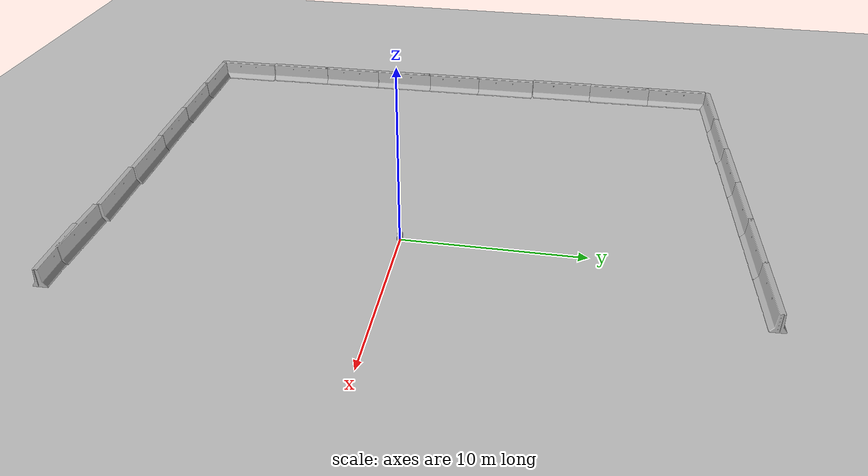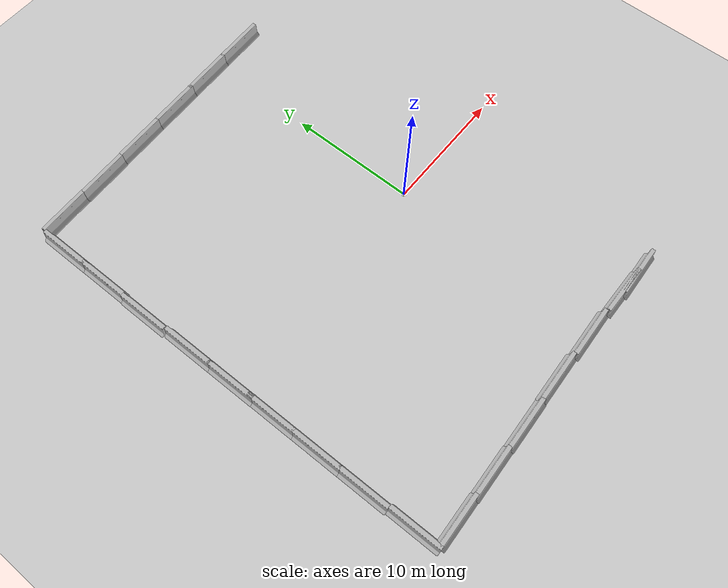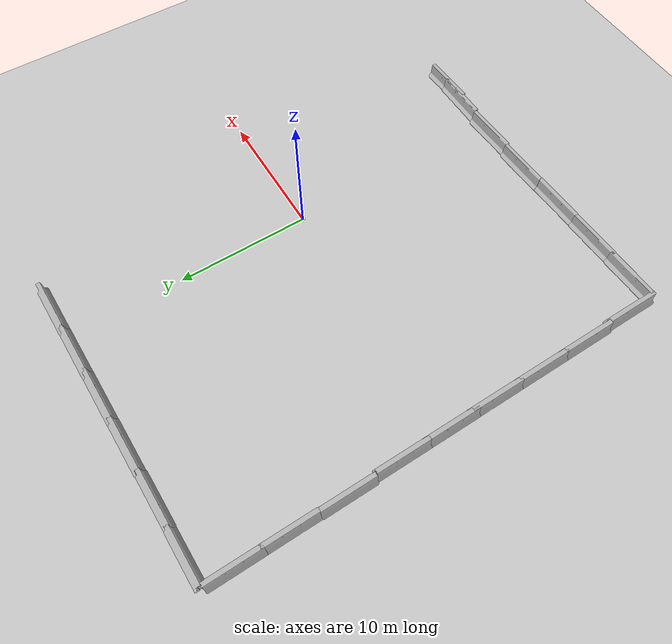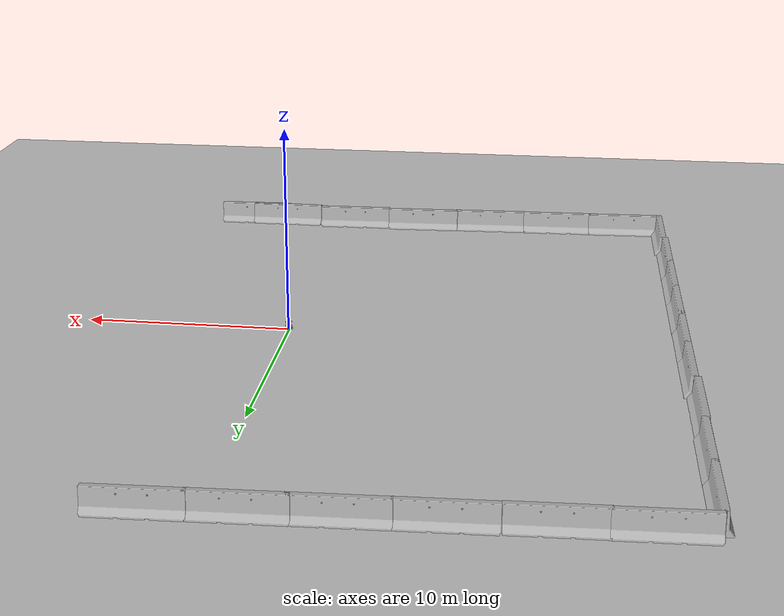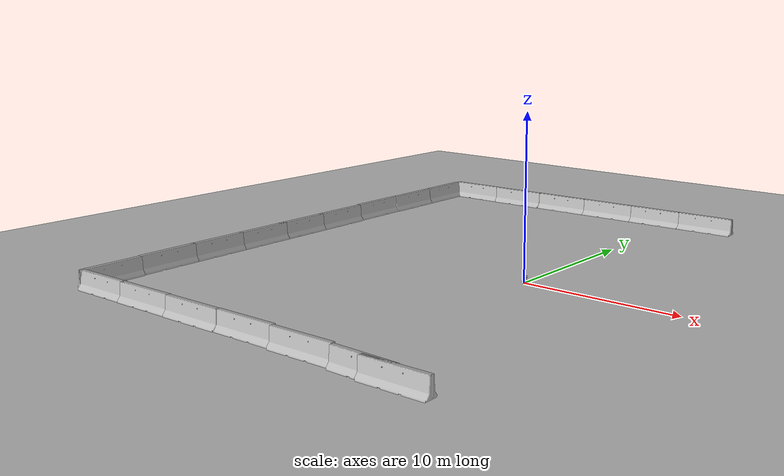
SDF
<sdf version="1.6">
 <world name="default">
  <model name="ground_plane">
   <static>1</static>
   <link name="link">
    <collision name="collision">
     <geometry><plane><normal>0 0 1</normal><size>100 100</size></plane></geometry>
     <surface><friction><ode><mu>100</mu><mu2>50</mu2></ode></friction></surface>
    </collision>
    <visual name="visual">
     <cast_shadows>0</cast_shadows>
     <geometry><plane><normal>0 0 1</normal><size>100 100</size></plane></geometry>
     <material>
      <script><uri>file://media/materials/scripts/gazebo.material</uri><name>Gazebo/Grey</name></script>
     </material>
    </visual>
   </link>
  </model>
  <model name="jersey_barrier">
   <static>1</static>
   <link name="link">
    <visual name="visual">
     <geometry>
      <mesh><uri>model://jersey_barrier/meshes/jersey_barrier.dae</uri><scale>1 1 1</scale></mesh>
     </geometry>
    </visual>
    <collision name="upright">
     <pose>0 0 0.5715 0 -0 0</pose>
     <geometry><box><size>4.06542 0.3063 1.143</size></box></geometry>
    </collision>
    <collision name="base">
     <pose>0 0 0.032258 0 -0 0</pose>
     <geometry><box><size>4.06542 0.8107 0.064516</size></box></geometry>
    </collision>
    <collision name="base2">
     <pose>0 0 0.1 0 -0 0</pose>
     <geometry><box><size>4.06542 0.65 0.1</size></box></geometry>
    </collision>
    <collision name="base3">
     <pose>0 0 0.2 0 -0 0</pose>
     <geometry><box><size>4.06542 0.5 0.1</size></box></geometry>
    </collision>
    <collision name="left-angle">
     <pose>0 -0.224 0.2401 0.9 -0 0</pose>
     <geometry><box><size>4.06542 0.5 0.064516</size></box></geometry>
    </collision>
    <collision name="right-angle">
     <pose>0 0.224 0.2401 -0.9 0 0</pose>
     <geometry><box><size>4.06542 0.5 0.064516</size></box></geometry>
    </collision>
   </link>
   <pose>-0.913416 -16.6952 0 0 -0 0.033275</pose>
  </model>
  <model name="jersey_barrier_clone">
   <static>1</static>
   <link name="link">
    <visual name="visual">
     <geometry>
      <mesh><uri>model://jersey_barrier/meshes/jersey_barrier.dae</uri><scale>1 1 1</scale></mesh>
     </geometry>
    </visual>
    <collision name="upright">
     <pose>0 0 0.5715 0 -0 0</pose>
     <geometry><box><size>4.06542 0.3063 1.143</size></box></geometry>
    </collision>
    <collision name="base">
     <pose>0 0 0.032258 0 -0 0</pose>
     <geometry><box><size>4.06542 0.8107 0.064516</size></box></geometry>
    </collision>
    <collision name="base2">
     <pose>0 0 0.1 0 -0 0</pose>
     <geometry><box><size>4.06542 0.65 0.1</size></box></geometry>
    </collision>
    <collision name="base3">
     <pose>0 0 0.2 0 -0 0</pose>
     <geometry><box><size>4.06542 0.5 0.1</size></box></geometry>
    </collision>
    <collision name="left-angle">
     <pose>0 -0.224 0.2401 0.9 -0 0</pose>
     <geometry><box><size>4.06542 0.5 0.064516</size></box></geometry>
    </collision>
    <collision name="right-angle">
     <pose>0 0.224 0.2401 -0.9 0 0</pose>
     <geometry><box><size>4.06542 0.5 0.064516</size></box></geometry>
    </collision>
   </link>
   <pose>5.06368 -16.8524 0 0 -0 0.033275</pose>
  </model>
  <model name="jersey_barrier_clone_clone">
   <static>1</static>
   <link name="link">
    <visual name="visual">
     <geometry>
      <mesh><uri>model://jersey_barrier/meshes/jersey_barrier.dae</uri><scale>1 1 1</scale></mesh>
     </geometry>
    </visual>
    <collision name="upright">
     <pose>0 0 0.5715 0 -0 0</pose>
     <geometry><box><size>4.06542 0.3063 1.143</size></box></geometry>
    </collision>
    <collision name="base">
     <pose>0 0 0.032258 0 -0 0</pose>
     <geometry><box><size>4.06542 0.8107 0.064516</size></box></geometry>
    </collision>
    <collision name="base2">
     <pose>0 0 0.1 0 -0 0</pose>
     <geometry><box><size>4.06542 0.65 0.1</size></box></geometry>
    </collision>
    <collision name="base3">
     <pose>0 0 0.2 0 -0 0</pose>
     <geometry><box><size>4.06542 0.5 0.1</size></box></geometry>
    </collision>
    <collision name="left-angle">
     <pose>0 -0.224 0.2401 0.9 -0 0</pose>
     <geometry><box><size>4.06542 0.5 0.064516</size></box></geometry>
    </collision>
    <collision name="right-angle">
     <pose>0 0.224 0.2401 -0.9 0 0</pose>
     <geometry><box><size>4.06542 0.5 0.064516</size></box></geometry>
    </collision>
   </link>
   <pose>-4.93978 -16.7019 0 0 -0 0.033275</pose>
  </model>
  <model name="jersey_barrier_clone_clone_clone_0">
   <static>1</static>
   <link name="link">
    <visual name="visual">
     <geometry>
      <mesh><uri>model://jersey_barrier/meshes/jersey_barrier.dae</uri><scale>1 1 1</scale></mesh>
     </geometry>
    </visual>
    <collision name="upright">
     <pose>0 0 0.5715 0 -0 0</pose>
     <geometry><box><size>4.06542 0.3063 1.143</size></box></geometry>
    </collision>
    <collision name="base">
     <pose>0 0 0.032258 0 -0 0</pose>
     <geometry><box><size>4.06542 0.8107 0.064516</size></box></geometry>
    </collision>
    <collision name="base2">
     <pose>0 0 0.1 0 -0 0</pose>
     <geometry><box><size>4.06542 0.65 0.1</size></box></geometry>
    </collision>
    <collision name="base3">
     <pose>0 0 0.2 0 -0 0</pose>
     <geometry><box><size>4.06542 0.5 0.1</size></box></geometry>
    </collision>
    <collision name="left-angle">
     <pose>0 -0.224 0.2401 0.9 -0 0</pose>
     <geometry><box><size>4.06542 0.5 0.064516</size></box></geometry>
    </collision>
    <collision name="right-angle">
     <pose>0 0.224 0.2401 -0.9 0 0</pose>
     <geometry><box><size>4.06542 0.5 0.064516</size></box></geometry>
    </collision>
   </link>
   <pose>-8.88852 -16.868 0 0 -0 0.033275</pose>
  </model>
  <model name="jersey_barrier_clone_clone_clone_2">
   <static>1</static>
   <link name="link">
    <visual name="visual">
     <geometry>
      <mesh><uri>model://jersey_barrier/meshes/jersey_barrier.dae</uri><scale>1 1 1</scale></mesh>
     </geometry>
    </visual>
    <collision name="upright">
     <pose>0 0 0.5715 0 -0 0</pose>
     <geometry><box><size>4.06542 0.3063 1.143</size></box></geometry>
    </collision>
    <collision name="base">
     <pose>0 0 0.032258 0 -0 0</pose>
     <geometry><box><size>4.06542 0.8107 0.064516</size></box></geometry>
    </collision>
    <collision name="base2">
     <pose>0 0 0.1 0 -0 0</pose>
     <geometry><box><size>4.06542 0.65 0.1</size></box></geometry>
    </collision>
    <collision name="base3">
     <pose>0 0 0.2 0 -0 0</pose>
     <geometry><box><size>4.06542 0.5 0.1</size></box></geometry>
    </collision>
    <collision name="left-angle">
     <pose>0 -0.224 0.2401 0.9 -0 0</pose>
     <geometry><box><size>4.06542 0.5 0.064516</size></box></geometry>
    </collision>
    <collision name="right-angle">
     <pose>0 0.224 0.2401 -0.9 0 0</pose>
     <geometry><box><size>4.06542 0.5 0.064516</size></box></geometry>
    </collision>
   </link>
   <pose>-12.8673 -16.9656 0 0 -0 0.033275</pose>
  </model>
  <model name="jersey_barrier_clone_clone_clone_clone_0_clone_0_clone_clone_1">
   <static>1</static>
   <link name="link">
    <visual name="visual">
     <geometry>
      <mesh><uri>model://jersey_barrier/meshes/jersey_barrier.dae</uri><scale>1 1 1</scale></mesh>
     </geometry>
    </visual>
    <collision name="upright">
     <pose>0 0 0.5715 0 -0 0</pose>
     <geometry><box><size>4.06542 0.3063 1.143</size></box></geometry>
    </collision>
    <collision name="base">
     <pose>0 0 0.032258 0 -0 0</pose>
     <geometry><box><size>4.06542 0.8107 0.064516</size></box></geometry>
    </collision>
    <collision name="base2">
     <pose>0 0 0.1 0 -0 0</pose>
     <geometry><box><size>4.06542 0.65 0.1</size></box></geometry>
    </collision>
    <collision name="base3">
     <pose>0 0 0.2 0 -0 0</pose>
     <geometry><box><size>4.06542 0.5 0.1</size></box></geometry>
    </collision>
    <collision name="left-angle">
     <pose>0 -0.224 0.2401 0.9 -0 0</pose>
     <geometry><box><size>4.06542 0.5 0.064516</size></box></geometry>
    </collision>
    <collision name="right-angle">
     <pose>0 0.224 0.2401 -0.9 0 0</pose>
     <geometry><box><size>4.06542 0.5 0.064516</size></box></geometry>
    </collision>
   </link>
   <pose>2.36253 18.639 0 0 -0 0.033275</pose>
  </model>
  <model name="jersey_barrier_clone_clone_clone_clone_0_clone_0_clone_clone_2">
   <static>1</static>
   <link name="link">
    <visual name="visual">
     <geometry>
      <mesh><uri>model://jersey_barrier/meshes/jersey_barrier.dae</uri><scale>1 1 1</scale></mesh>
     </geometry>
    </visual>
    <collision name="upright">
     <pose>0 0 0.5715 0 -0 0</pose>
     <geometry><box><size>4.06542 0.3063 1.143</size></box></geometry>
    </collision>
    <collision name="base">
     <pose>0 0 0.032258 0 -0 0</pose>
     <geometry><box><size>4.06542 0.8107 0.064516</size></box></geometry>
    </collision>
    <collision name="base2">
     <pose>0 0 0.1 0 -0 0</pose>
     <geometry><box><size>4.06542 0.65 0.1</size></box></geometry>
    </collision>
    <collision name="base3">
     <pose>0 0 0.2 0 -0 0</pose>
     <geometry><box><size>4.06542 0.5 0.1</size></box></geometry>
    </collision>
    <collision name="left-angle">
     <pose>0 -0.224 0.2401 0.9 -0 0</pose>
     <geometry><box><size>4.06542 0.5 0.064516</size></box></geometry>
    </collision>
    <collision name="right-angle">
     <pose>0 0.224 0.2401 -0.9 0 0</pose>
     <geometry><box><size>4.06542 0.5 0.064516</size></box></geometry>
    </collision>
   </link>
   <pose>-1.50152 18.5003 0 0 -0 0.033275</pose>
  </model>
  <model name="jersey_barrier_clone_clone_clone_clone_0_clone_0_clone_clone_3">
   <static>1</static>
   <link name="link">
    <visual name="visual">
     <geometry>
      <mesh><uri>model://jersey_barrier/meshes/jersey_barrier.dae</uri><scale>1 1 1</scale></mesh>
     </geometry>
    </visual>
    <collision name="upright">
     <pose>0 0 0.5715 0 -0 0</pose>
     <geometry><box><size>4.06542 0.3063 1.143</size></box></geometry>
    </collision>
    <collision name="base">
     <pose>0 0 0.032258 0 -0 0</pose>
     <geometry><box><size>4.06542 0.8107 0.064516</size></box></geometry>
    </collision>
    <collision name="base2">
     <pose>0 0 0.1 0 -0 0</pose>
     <geometry><box><size>4.06542 0.65 0.1</size></box></geometry>
    </collision>
    <collision name="base3">
     <pose>0 0 0.2 0 -0 0</pose>
     <geometry><box><size>4.06542 0.5 0.1</size></box></geometry>
    </collision>
    <collision name="left-angle">
     <pose>0 -0.224 0.2401 0.9 -0 0</pose>
     <geometry><box><size>4.06542 0.5 0.064516</size></box></geometry>
    </collision>
    <collision name="right-angle">
     <pose>0 0.224 0.2401 -0.9 0 0</pose>
     <geometry><box><size>4.06542 0.5 0.064516</size></box></geometry>
    </collision>
   </link>
   <pose>-5.27021 18.3618 0 0 -0 0.033275</pose>
  </model>
  <model name="jersey_barrier_clone_clone_clone_clone_0_clone_0_clone_clone_4">
   <static>1</static>
   <link name="link">
    <visual name="visual">
     <geometry>
      <mesh><uri>model://jersey_barrier/meshes/jersey_barrier.dae</uri><scale>1 1 1</scale></mesh>
     </geometry>
    </visual>
    <collision name="upright">
     <pose>0 0 0.5715 0 -0 0</pose>
     <geometry><box><size>4.06542 0.3063 1.143</size></box></geometry>
    </collision>
    <collision name="base">
     <pose>0 0 0.032258 0 -0 0</pose>
     <geometry><box><size>4.06542 0.8107 0.064516</size></box></geometry>
    </collision>
    <collision name="base2">
     <pose>0 0 0.1 0 -0 0</pose>
     <geometry><box><size>4.06542 0.65 0.1</size></box></geometry>
    </collision>
    <collision name="base3">
     <pose>0 0 0.2 0 -0 0</pose>
     <geometry><box><size>4.06542 0.5 0.1</size></box></geometry>
    </collision>
    <collision name="left-angle">
     <pose>0 -0.224 0.2401 0.9 -0 0</pose>
     <geometry><box><size>4.06542 0.5 0.064516</size></box></geometry>
    </collision>
    <collision name="right-angle">
     <pose>0 0.224 0.2401 -0.9 0 0</pose>
     <geometry><box><size>4.06542 0.5 0.064516</size></box></geometry>
    </collision>
   </link>
   <pose>-9.19914 18.219 0 0 -0 0.033275</pose>
  </model>
  <model name="jersey_barrier_clone_clone_clone_clone_0_clone_0_clone_clone_4_clone">
   <static>1</static>
   <link name="link">
    <visual name="visual">
     <geometry>
      <mesh><uri>model://jersey_barrier/meshes/jersey_barrier.dae</uri><scale>1 1 1</scale></mesh>
     </geometry>
    </visual>
    <collision name="upright">
     <pose>0 0 0.5715 0 -0 0</pose>
     <geometry><box><size>4.06542 0.3063 1.143</size></box></geometry>
    </collision>
    <collision name="base">
     <pose>0 0 0.032258 0 -0 0</pose>
     <geometry><box><size>4.06542 0.8107 0.064516</size></box></geometry>
    </collision>
    <collision name="base2">
     <pose>0 0 0.1 0 -0 0</pose>
     <geometry><box><size>4.06542 0.65 0.1</size></box></geometry>
    </collision>
    <collision name="base3">
     <pose>0 0 0.2 0 -0 0</pose>
     <geometry><box><size>4.06542 0.5 0.1</size></box></geometry>
    </collision>
    <collision name="left-angle">
     <pose>0 -0.224 0.2401 0.9 -0 0</pose>
     <geometry><box><size>4.06542 0.5 0.064516</size></box></geometry>
    </collision>
    <collision name="right-angle">
     <pose>0 0.224 0.2401 -0.9 0 0</pose>
     <geometry><box><size>4.06542 0.5 0.064516</size></box></geometry>
    </collision>
   </link>
   <pose>-13.2057 18.0477 0 0 -0 0.033275</pose>
  </model>
  <model name="jersey_barrier_clone_clone_clone_clone_0_clone_0_clone_clone_4_clone_clone">
   <static>1</static>
   <link name="link">
    <visual name="visual">
     <geometry>
      <mesh><uri>model://jersey_barrier/meshes/jersey_barrier.dae</uri><scale>1 1 1</scale></mesh>
     </geometry>
    </visual>
    <collision name="upright">
     <pose>0 0 0.5715 0 -0 0</pose>
     <geometry><box><size>4.06542 0.3063 1.143</size></box></geometry>
    </collision>
    <collision name="base">
     <pose>0 0 0.032258 0 -0 0</pose>
     <geometry><box><size>4.06542 0.8107 0.064516</size></box></geometry>
    </collision>
    <collision name="base2">
     <pose>0 0 0.1 0 -0 0</pose>
     <geometry><box><size>4.06542 0.65 0.1</size></box></geometry>
    </collision>
    <collision name="base3">
     <pose>0 0 0.2 0 -0 0</pose>
     <geometry><box><size>4.06542 0.5 0.1</size></box></geometry>
    </collision>
    <collision name="left-angle">
     <pose>0 -0.224 0.2401 0.9 -0 0</pose>
     <geometry><box><size>4.06542 0.5 0.064516</size></box></geometry>
    </collision>
    <collision name="right-angle">
     <pose>0 0.224 0.2401 -0.9 0 0</pose>
     <geometry><box><size>4.06542 0.5 0.064516</size></box></geometry>
    </collision>
   </link>
   <pose>-17.1438 17.9443 0 0 -0 0.033275</pose>
  </model>
  <model name="jersey_barrier_clone_clone_clone_3_clone_clone_1_clone_0">
   <static>1</static>
   <link name="link">
    <visual name="visual">
     <geometry>
      <mesh><uri>model://jersey_barrier/meshes/jersey_barrier.dae</uri><scale>1 1 1</scale></mesh>
     </geometry>
    </visual>
    <collision name="upright">
     <pose>0 0 0.5715 0 -0 0</pose>
     <geometry><box><size>4.06542 0.3063 1.143</size></box></geometry>
    </collision>
    <collision name="base">
     <pose>0 0 0.032258 0 -0 0</pose>
     <geometry><box><size>4.06542 0.8107 0.064516</size></box></geometry>
    </collision>
    <collision name="base2">
     <pose>0 0 0.1 0 -0 0</pose>
     <geometry><box><size>4.06542 0.65 0.1</size></box></geometry>
    </collision>
    <collision name="base3">
     <pose>0 0 0.2 0 -0 0</pose>
     <geometry><box><size>4.06542 0.5 0.1</size></box></geometry>
    </collision>
    <collision name="left-angle">
     <pose>0 -0.224 0.2401 0.9 -0 0</pose>
     <geometry><box><size>4.06542 0.5 0.064516</size></box></geometry>
    </collision>
    <collision name="right-angle">
     <pose>0 0.224 0.2401 -0.9 0 0</pose>
     <geometry><box><size>4.06542 0.5 0.064516</size></box></geometry>
    </collision>
   </link>
   <pose>-19.1448 15.6922 0 0 0 -1.5622</pose>
  </model>
  <model name="jersey_barrier_clone_clone_clone_3_clone_clone_1_clone_0_clone">
   <static>1</static>
   <link name="link">
    <visual name="visual">
     <geometry>
      <mesh><uri>model://jersey_barrier/meshes/jersey_barrier.dae</uri><scale>1 1 1</scale></mesh>
     </geometry>
    </visual>
    <collision name="upright">
     <pose>0 0 0.5715 0 -0 0</pose>
     <geometry><box><size>4.06542 0.3063 1.143</size></box></geometry>
    </collision>
    <collision name="base">
     <pose>0 0 0.032258 0 -0 0</pose>
     <geometry><box><size>4.06542 0.8107 0.064516</size></box></geometry>
    </collision>
    <collision name="base2">
     <pose>0 0 0.1 0 -0 0</pose>
     <geometry><box><size>4.06542 0.65 0.1</size></box></geometry>
    </collision>
    <collision name="base3">
     <pose>0 0 0.2 0 -0 0</pose>
     <geometry><box><size>4.06542 0.5 0.1</size></box></geometry>
    </collision>
    <collision name="left-angle">
     <pose>0 -0.224 0.2401 0.9 -0 0</pose>
     <geometry><box><size>4.06542 0.5 0.064516</size></box></geometry>
    </collision>
    <collision name="right-angle">
     <pose>0 0.224 0.2401 -0.9 0 0</pose>
     <geometry><box><size>4.06542 0.5 0.064516</size></box></geometry>
    </collision>
   </link>
   <pose>-19.1056 11.8976 0 0 0 -1.5622</pose>
  </model>
  <model name="jersey_barrier_clone_clone_clone_3_clone_clone_1_clone_0_clone_0">
   <static>1</static>
   <link name="link">
    <visual name="visual">
     <geometry>
      <mesh><uri>model://jersey_barrier/meshes/jersey_barrier.dae</uri><scale>1 1 1</scale></mesh>
     </geometry>
    </visual>
    <collision name="upright">
     <pose>0 0 0.5715 0 -0 0</pose>
     <geometry><box><size>4.06542 0.3063 1.143</size></box></geometry>
    </collision>
    <collision name="base">
     <pose>0 0 0.032258 0 -0 0</pose>
     <geometry><box><size>4.06542 0.8107 0.064516</size></box></geometry>
    </collision>
    <collision name="base2">
     <pose>0 0 0.1 0 -0 0</pose>
     <geometry><box><size>4.06542 0.65 0.1</size></box></geometry>
    </collision>
    <collision name="base3">
     <pose>0 0 0.2 0 -0 0</pose>
     <geometry><box><size>4.06542 0.5 0.1</size></box></geometry>
    </collision>
    <collision name="left-angle">
     <pose>0 -0.224 0.2401 0.9 -0 0</pose>
     <geometry><box><size>4.06542 0.5 0.064516</size></box></geometry>
    </collision>
    <collision name="right-angle">
     <pose>0 0.224 0.2401 -0.9 0 0</pose>
     <geometry><box><size>4.06542 0.5 0.064516</size></box></geometry>
    </collision>
   </link>
   <pose>-19.118 7.89262 0 0 0 -1.5622</pose>
  </model>
  <model name="jersey_barrier_clone_clone_clone_3_clone_clone_1_clone_0_clone_1">
   <static>1</static>
   <link name="link">
    <visual name="visual">
     <geometry>
      <mesh><uri>model://jersey_barrier/meshes/jersey_barrier.dae</uri><scale>1 1 1</scale></mesh>
     </geometry>
    </visual>
    <collision name="upright">
     <pose>0 0 0.5715 0 -0 0</pose>
     <geometry><box><size>4.06542 0.3063 1.143</size></box></geometry>
    </collision>
    <collision name="base">
     <pose>0 0 0.032258 0 -0 0</pose>
     <geometry><box><size>4.06542 0.8107 0.064516</size></box></geometry>
    </collision>
    <collision name="base2">
     <pose>0 0 0.1 0 -0 0</pose>
     <geometry><box><size>4.06542 0.65 0.1</size></box></geometry>
    </collision>
    <collision name="base3">
     <pose>0 0 0.2 0 -0 0</pose>
     <geometry><box><size>4.06542 0.5 0.1</size></box></geometry>
    </collision>
    <collision name="left-angle">
     <pose>0 -0.224 0.2401 0.9 -0 0</pose>
     <geometry><box><size>4.06542 0.5 0.064516</size></box></geometry>
    </collision>
    <collision name="right-angle">
     <pose>0 0.224 0.2401 -0.9 0 0</pose>
     <geometry><box><size>4.06542 0.5 0.064516</size></box></geometry>
    </collision>
   </link>
   <pose>-18.9683 3.80804 0 0 0 -1.5622</pose>
  </model>
  <model name="jersey_barrier_clone_clone_clone_3_clone_clone_1_clone_0_clone_2">
   <static>1</static>
   <link name="link">
    <visual name="visual">
     <geometry>
      <mesh><uri>model://jersey_barrier/meshes/jersey_barrier.dae</uri><scale>1 1 1</scale></mesh>
     </geometry>
    </visual>
    <collision name="upright">
     <pose>0 0 0.5715 0 -0 0</pose>
     <geometry><box><size>4.06542 0.3063 1.143</size></box></geometry>
    </collision>
    <collision name="base">
     <pose>0 0 0.032258 0 -0 0</pose>
     <geometry><box><size>4.06542 0.8107 0.064516</size></box></geometry>
    </collision>
    <collision name="base2">
     <pose>0 0 0.1 0 -0 0</pose>
     <geometry><box><size>4.06542 0.65 0.1</size></box></geometry>
    </collision>
    <collision name="base3">
     <pose>0 0 0.2 0 -0 0</pose>
     <geometry><box><size>4.06542 0.5 0.1</size></box></geometry>
    </collision>
    <collision name="left-angle">
     <pose>0 -0.224 0.2401 0.9 -0 0</pose>
     <geometry><box><size>4.06542 0.5 0.064516</size></box></geometry>
    </collision>
    <collision name="right-angle">
     <pose>0 0.224 0.2401 -0.9 0 0</pose>
     <geometry><box><size>4.06542 0.5 0.064516</size></box></geometry>
    </collision>
   </link>
   <pose>-18.9314 -0.026238 0 0 0 -1.5622</pose>
  </model>
  <model name="jersey_barrier_clone_clone_clone_3_clone_clone_1_clone_0_clone_3">
   <static>1</static>
   <link name="link">
    <visual name="visual">
     <geometry>
      <mesh><uri>model://jersey_barrier/meshes/jersey_barrier.dae</uri><scale>1 1 1</scale></mesh>
     </geometry>
    </visual>
    <collision name="upright">
     <pose>0 0 0.5715 0 -0 0</pose>
     <geometry><box><size>4.06542 0.3063 1.143</size></box></geometry>
    </collision>
    <collision name="base">
     <pose>0 0 0.032258 0 -0 0</pose>
     <geometry><box><size>4.06542 0.8107 0.064516</size></box></geometry>
    </collision>
    <collision name="base2">
     <pose>0 0 0.1 0 -0 0</pose>
     <geometry><box><size>4.06542 0.65 0.1</size></box></geometry>
    </collision>
    <collision name="base3">
     <pose>0 0 0.2 0 -0 0</pose>
     <geometry><box><size>4.06542 0.5 0.1</size></box></geometry>
    </collision>
    <collision name="left-angle">
     <pose>0 -0.224 0.2401 0.9 -0 0</pose>
     <geometry><box><size>4.06542 0.5 0.064516</size></box></geometry>
    </collision>
    <collision name="right-angle">
     <pose>0 0.224 0.2401 -0.9 0 0</pose>
     <geometry><box><size>4.06542 0.5 0.064516</size></box></geometry>
    </collision>
   </link>
   <pose>-18.8885 -3.54912 0 0 0 -1.5622</pose>
  </model>
  <model name="jersey_barrier_clone_clone_clone_3_clone_clone_1_clone_0_clone_4">
   <static>1</static>
   <link name="link">
    <visual name="visual">
     <geometry>
      <mesh><uri>model://jersey_barrier/meshes/jersey_barrier.dae</uri><scale>1 1 1</scale></mesh>
     </geometry>
    </visual>
    <collision name="upright">
     <pose>0 0 0.5715 0 -0 0</pose>
     <geometry><box><size>4.06542 0.3063 1.143</size></box></geometry>
    </collision>
    <collision name="base">
     <pose>0 0 0.032258 0 -0 0</pose>
     <geometry><box><size>4.06542 0.8107 0.064516</size></box></geometry>
    </collision>
    <collision name="base2">
     <pose>0 0 0.1 0 -0 0</pose>
     <geometry><box><size>4.06542 0.65 0.1</size></box></geometry>
    </collision>
    <collision name="base3">
     <pose>0 0 0.2 0 -0 0</pose>
     <geometry><box><size>4.06542 0.5 0.1</size></box></geometry>
    </collision>
    <collision name="left-angle">
     <pose>0 -0.224 0.2401 0.9 -0 0</pose>
     <geometry><box><size>4.06542 0.5 0.064516</size></box></geometry>
    </collision>
    <collision name="right-angle">
     <pose>0 0.224 0.2401 -0.9 0 0</pose>
     <geometry><box><size>4.06542 0.5 0.064516</size></box></geometry>
    </collision>
   </link>
   <pose>-18.8515 -7.38298 0 0 0 -1.5622</pose>
  </model>
  <model name="jersey_barrier_clone_clone_clone_3_clone_clone_1_clone_0_clone_5">
   <static>1</static>
   <link name="link">
    <visual name="visual">
     <geometry>
      <mesh><uri>model://jersey_barrier/meshes/jersey_barrier.dae</uri><scale>1 1 1</scale></mesh>
     </geometry>
    </visual>
    <collision name="upright">
     <pose>0 0 0.5715 0 -0 0</pose>
     <geometry><box><size>4.06542 0.3063 1.143</size></box></geometry>
    </collision>
    <collision name="base">
     <pose>0 0 0.032258 0 -0 0</pose>
     <geometry><box><size>4.06542 0.8107 0.064516</size></box></geometry>
    </collision>
    <collision name="base2">
     <pose>0 0 0.1 0 -0 0</pose>
     <geometry><box><size>4.06542 0.65 0.1</size></box></geometry>
    </collision>
    <collision name="base3">
     <pose>0 0 0.2 0 -0 0</pose>
     <geometry><box><size>4.06542 0.5 0.1</size></box></geometry>
    </collision>
    <collision name="left-angle">
     <pose>0 -0.224 0.2401 0.9 -0 0</pose>
     <geometry><box><size>4.06542 0.5 0.064516</size></box></geometry>
    </collision>
    <collision name="right-angle">
     <pose>0 0.224 0.2401 -0.9 0 0</pose>
     <geometry><box><size>4.06542 0.5 0.064516</size></box></geometry>
    </collision>
   </link>
   <pose>-18.8143 -11.2174 0 0 0 -1.5622</pose>
  </model>
  <model name="jersey_barrier_clone_clone_clone_3_clone_clone_1_clone_0_clone_6">
   <static>1</static>
   <link name="link">
    <visual name="visual">
     <geometry>
      <mesh><uri>model://jersey_barrier/meshes/jersey_barrier.dae</uri><scale>1 1 1</scale></mesh>
     </geometry>
    </visual>
    <collision name="upright">
     <pose>0 0 0.5715 0 -0 0</pose>
     <geometry><box><size>4.06542 0.3063 1.143</size></box></geometry>
    </collision>
    <collision name="base">
     <pose>0 0 0.032258 0 -0 0</pose>
     <geometry><box><size>4.06542 0.8107 0.064516</size></box></geometry>
    </collision>
    <collision name="base2">
     <pose>0 0 0.1 0 -0 0</pose>
     <geometry><box><size>4.06542 0.65 0.1</size></box></geometry>
    </collision>
    <collision name="base3">
     <pose>0 0 0.2 0 -0 0</pose>
     <geometry><box><size>4.06542 0.5 0.1</size></box></geometry>
    </collision>
    <collision name="left-angle">
     <pose>0 -0.224 0.2401 0.9 -0 0</pose>
     <geometry><box><size>4.06542 0.5 0.064516</size></box></geometry>
    </collision>
    <collision name="right-angle">
     <pose>0 0.224 0.2401 -0.9 0 0</pose>
     <geometry><box><size>4.06542 0.5 0.064516</size></box></geometry>
    </collision>
   </link>
   <pose>-18.6779 -15.2602 0 0 0 -1.5622</pose>
  </model>
  <model name="jersey_barrier_clone_clone_clone_2_clone">
   <static>1</static>
   <link name="link">
    <visual name="visual">
     <geometry>
      <mesh><uri>model://jersey_barrier/meshes/jersey_barrier.dae</uri><scale>1 1 1</scale></mesh>
     </geometry>
    </visual>
    <collision name="upright">
     <pose>0 0 0.5715 0 -0 0</pose>
     <geometry><box><size>4.06542 0.3063 1.143</size></box></geometry>
    </collision>
    <collision name="base">
     <pose>0 0 0.032258 0 -0 0</pose>
     <geometry><box><size>4.06542 0.8107 0.064516</size></box></geometry>
    </collision>
    <collision name="base2">
     <pose>0 0 0.1 0 -0 0</pose>
     <geometry><box><size>4.06542 0.65 0.1</size></box></geometry>
    </collision>
    <collision name="base3">
     <pose>0 0 0.2 0 -0 0</pose>
     <geometry><box><size>4.06542 0.5 0.1</size></box></geometry>
    </collision>
    <collision name="left-angle">
     <pose>0 -0.224 0.2401 0.9 -0 0</pose>
     <geometry><box><size>4.06542 0.5 0.064516</size></box></geometry>
    </collision>
    <collision name="right-angle">
     <pose>0 0.224 0.2401 -0.9 0 0</pose>
     <geometry><box><size>4.06542 0.5 0.064516</size></box></geometry>
    </collision>
   </link>
   <pose>-16.6367 -17.055 0 0 -0 0.033275</pose>
  </model>
  <model name="jersey_barrier_clone_0">
   <static>1</static>
   <link name="link">
    <visual name="visual">
     <geometry>
      <mesh><uri>model://jersey_barrier/meshes/jersey_barrier.dae</uri><scale>1 1 1</scale></mesh>
     </geometry>
    </visual>
    <collision name="upright">
     <pose>0 0 0.5715 0 -0 0</pose>
     <geometry><box><size>4.06542 0.3063 1.143</size></box></geometry>
    </collision>
    <collision name="base">
     <pose>0 0 0.032258 0 -0 0</pose>
     <geometry><box><size>4.06542 0.8107 0.064516</size></box></geometry>
    </collision>
    <collision name="base2">
     <pose>0 0 0.1 0 -0 0</pose>
     <geometry><box><size>4.06542 0.65 0.1</size></box></geometry>
    </collision>
    <collision name="base3">
     <pose>0 0 0.2 0 -0 0</pose>
     <geometry><box><size>4.06542 0.5 0.1</size></box></geometry>
    </collision>
    <collision name="left-angle">
     <pose>0 -0.224 0.2401 0.9 -0 0</pose>
     <geometry><box><size>4.06542 0.5 0.064516</size></box></geometry>
    </collision>
    <collision name="right-angle">
     <pose>0 0.224 0.2401 -0.9 0 0</pose>
     <geometry><box><size>4.06542 0.5 0.064516</size></box></geometry>
    </collision>
   </link>
   <pose>3.17006 -16.7915 0 0 0 -0.002345</pose>
  </model>
  <model name="mobile_base">
   <link name="base_footprint">
    <inertial>
     <pose>-0.009496 1.3e-05 0.135573 0 -0 0</pose>
     <mass>4.9213</mass>
     <inertia>
      <ixx>0.142129</ixx>
      <ixy>-4.09257e-06</ixy>
      <ixz>0.0154899</ixz>
      <iyy>0.140784</iyy>
      <iyz>6.52071e-06</iyz>
      <izz>0.0801071</izz>
     </inertia>
    </inertial>
    <collision name="base_footprint_fixed_joint_lump__base_collision">
     <pose>0 0 0.06969 0 -0 0</pose>
     <geometry><cylinder><length>0.10938</length><radius>0.178</radius></cylinder></geometry>
    </collision>
    <collision name="base_footprint_fixed_joint_lump__camera_link_collision_1">
     <pose>-0.118 0 0.2812 0 -0 0</pose>
     <geometry><box><size>0.07271 0.27794 0.073</size></box></geometry>
    </collision>
    <collision name="base_footprint_fixed_joint_lump__caster_back_link_collision_2">
     <pose>-0.135 0 0.0192 -1.5708 0 0</pose>
     <geometry><cylinder><length>0.0176</length><radius>0.017</radius></cylinder></geometry>
     <surface>
      <contact><ode><kp>1e+06</kp><kd>100</kd><max_vel>1</max_vel><min_depth>0.001</min_depth></ode></contact>
      <friction><ode><mu>0</mu><mu2>0</mu2></ode></friction>
     </surface>
    </collision>
    <collision name="base_footprint_fixed_joint_lump__caster_front_link_collision_3">
     <pose>0.115 0 0.0172 -1.5708 0 0</pose>
     <geometry><cylinder><length>0.0176</length><radius>0.017</radius></cylinder></geometry>
     <surface>
      <contact><ode><kp>1e+06</kp><kd>100</kd><max_vel>1</max_vel><min_depth>0.001</min_depth></ode></contact>
      <friction><ode><mu>0</mu><mu2>0</mu2></ode></friction>
     </surface>
    </collision>
    <collision name="base_footprint_fixed_joint_lump__plate_bottom_link_collision_4">
     <pose>0 0 0.1408 0 -0 0</pose>
     <geometry><cylinder><length>0.006</length><radius>0.17</radius></cylinder></geometry>
    </collision>
    <collision name="base_footprint_fixed_joint_lump__plate_middle_link_collision_5">
     <pose>0 0 0.1976 0 -0 0</pose>
     <geometry><cylinder><length>0.006</length><radius>0.17</radius></cylinder></geometry>
    </collision>
    <collision name="base_footprint_fixed_joint_lump__plate_top_link_collision_6">
     <pose>0 0 0.4068 0 -0 0</pose>
     <geometry><cylinder><length>0.006</length><radius>0.17</radius></cylinder></geometry>
    </collision>
    <collision name="base_footprint_fixed_joint_lump__pole_bottom_0_link_collision_7">
     <pose>0.12 0.082 0.113 0 -0 0</pose>
     <geometry><cylinder><length>0.0492</length><radius>0.006</radius></cylinder></geometry>
    </collision>
    <collision name="base_footprint_fixed_joint_lump__pole_bottom_1_link_collision_8">
     <pose>0.055 0.12 0.113 0 -0 0</pose>
     <geometry><cylinder><length>0.0492</length><radius>0.006</radius></cylinder></geometry>
    </collision>
    <collision name="base_footprint_fixed_joint_lump__pole_bottom_2_link_collision_9">
     <pose>-0.055 0.12 0.113 0 -0 0</pose>
     <geometry><cylinder><length>0.0492</length><radius>0.006</radius></cylinder></geometry>
    </collision>
    <collision name="base_footprint_fixed_joint_lump__pole_bottom_3_link_collision_10">
     <pose>0.12 -0.082 0.113 0 -0 0</pose>
     <geometry><cylinder><length>0.0492</length><radius>0.006</radius></cylinder></geometry>
    </collision>
    <collision name="base_footprint_fixed_joint_lump__pole_bottom_4_link_collision_11">
     <pose>0.055 -0.12 0.113 0 -0 0</pose>
     <geometry><cylinder><length>0.0492</length><radius>0.006</radius></cylinder></geometry>
    </collision>
    <collision name="base_footprint_fixed_joint_lump__pole_bottom_5_link_collision_12">
     <pose>-0.055 -0.12 0.113 0 -0 0</pose>
     <geometry><cylinder><length>0.0492</length><radius>0.006</radius></cylinder></geometry>
    </collision>
    <collision name="base_footprint_fixed_joint_lump__pole_kinect_0_link_collision_13">
     <pose>-0.1024 0.098 0.2474 0 -0 0</pose>
     <geometry><cylinder><length>0.0936</length><radius>0.006</radius></cylinder></geometry>
    </collision>
    <collision name="base_footprint_fixed_joint_lump__pole_kinect_1_link_collision_14">
     <pose>-0.1024 -0.098 0.2474 0 -0 0</pose>
     <geometry><cylinder><length>0.0936</length><radius>0.006</radius></cylinder></geometry>
    </collision>
    <collision name="base_footprint_fixed_joint_lump__pole_middle_0_link_collision_15">
     <pose>0.0381 0.1505 0.1742 0 -0 0</pose>
     <geometry><cylinder><length>0.0608</length><radius>0.006</radius></cylinder></geometry>
    </collision>
    <collision name="base_footprint_fixed_joint_lump__pole_middle_1_link_collision_16">
     <pose>0.0381 -0.1505 0.1742 0 -0 0</pose>
     <geometry><cylinder><length>0.0608</length><radius>0.006</radius></cylinder></geometry>
    </collision>
    <collision name="base_footprint_fixed_joint_lump__pole_middle_2_link_collision_17">
     <pose>-0.0381 0.1505 0.1742 0 -0 0</pose>
     <geometry><cylinder><length>0.0608</length><radius>0.006</radius></cylinder></geometry>
    </collision>
    <collision name="base_footprint_fixed_joint_lump__pole_middle_3_link_collision_18">
     <pose>-0.0381 -0.1505 0.1742 0 -0 0</pose>
     <geometry><cylinder><length>0.0608</length><radius>0.006</radius></cylinder></geometry>
    </collision>
    <collision name="base_footprint_fixed_joint_lump__pole_top_0_link_collision_19">
     <pose>0.0381 0.1505 0.3022 0 -0 0</pose>
     <geometry><cylinder><length>0.2032</length><radius>0.006</radius></cylinder></geometry>
    </collision>
    <collision name="base_footprint_fixed_joint_lump__pole_top_1_link_collision_20">
     <pose>0.0381 -0.1505 0.3022 0 -0 0</pose>
     <geometry><cylinder><length>0.2032</length><radius>0.006</radius></cylinder></geometry>
    </collision>
    <collision name="base_footprint_fixed_joint_lump__pole_top_2_link_collision_21">
     <pose>-0.0381 0.1505 0.3022 0 -0 0</pose>
     <geometry><cylinder><length>0.2032</length><radius>0.006</radius></cylinder></geometry>
    </collision>
    <collision name="base_footprint_fixed_joint_lump__pole_top_3_link_collision_22">
     <pose>-0.0381 -0.1505 0.3022 0 -0 0</pose>
     <geometry><cylinder><length>0.2032</length><radius>0.006</radius></cylinder></geometry>
    </collision>
    <visual name="base_footprint_fixed_joint_lump__base_link_visual">
     <pose>0.001 0 0.06219 0 -0 0</pose>
     <geometry>
      <mesh><scale>1 1 1</scale><uri>/opt/ros/kinetic/share/kobuki_description/meshes/main_body.dae</uri></mesh>
     </geometry>
     <material><script><uri>__default__</uri><name>__default__</name></script></material>
    </visual>
    <visual name="base_footprint_fixed_joint_lump__camera_link_visual_1">
     <pose>-0.118 0 0.2812 0 -0 1.5708</pose>
     <geometry>
      <mesh>
       <scale>1 1 1</scale>
       <uri>/opt/ros/kinetic/share/turtlebot_description/meshes/sensors/kinect.dae</uri>
      </mesh>
     </geometry>
     <material><script><uri>__default__</uri><name>__default__</name></script></material>
    </visual>
    <visual name="base_footprint_fixed_joint_lump__plate_bottom_link_visual_2">
     <pose>0.02364 0 0.1408 0 -0 0</pose>
     <geometry>
      <mesh>
       <scale>1 1 1</scale>
       <uri>/opt/ros/kinetic/share/turtlebot_description/meshes/stacks/hexagons/plate_bottom.dae</uri>
      </mesh>
     </geometry>
    </visual>
    <visual name="base_footprint_fixed_joint_lump__plate_middle_link_visual_3">
     <pose>-0.01364 0 0.1976 0 -0 0</pose>
     <geometry>
      <mesh>
       <scale>1 1 1</scale>
       <uri>/opt/ros/kinetic/share/turtlebot_description/meshes/stacks/hexagons/plate_middle.dae</uri>
      </mesh>
     </geometry>
    </visual>
    <visual name="base_footprint_fixed_joint_lump__plate_top_link_visual_4">
     <pose>-0.01364 0 0.4068 0 -0 0</pose>
     <geometry>
      <mesh>
       <scale>1 1 1</scale>
       <uri>/opt/ros/kinetic/share/turtlebot_description/meshes/stacks/hexagons/plate_top.dae</uri>
      </mesh>
     </geometry>
    </visual>
    <visual name="base_footprint_fixed_joint_lump__pole_bottom_0_link_visual_5">
     <pose>0.12 0.082 0.113 0 -0 0</pose>
     <geometry>
      <mesh>
       <scale>1 1 1</scale>
       <uri>/opt/ros/kinetic/share/turtlebot_description/meshes/stacks/hexagons/pole_bottom.dae</uri>
      </mesh>
     </geometry>
    </visual>
    <visual name="base_footprint_fixed_joint_lump__pole_bottom_1_link_visual_6">
     <pose>0.055 0.12 0.113 0 -0 0</pose>
     <geometry>
      <mesh>
       <scale>1 1 1</scale>
       <uri>/opt/ros/kinetic/share/turtlebot_description/meshes/stacks/hexagons/pole_bottom.dae</uri>
      </mesh>
     </geometry>
    </visual>
    <visual name="base_footprint_fixed_joint_lump__pole_bottom_2_link_visual_7">
     <pose>-0.055 0.12 0.113 0 -0 0</pose>
     <geometry>
      <mesh>
       <scale>1 1 1</scale>
       <uri>/opt/ros/kinetic/share/turtlebot_description/meshes/stacks/hexagons/pole_bottom.dae</uri>
      </mesh>
     </geometry>
    </visual>
    <visual name="base_footprint_fixed_joint_lump__pole_bottom_3_link_visual_8">
     <pose>0.12 -0.082 0.113 0 -0 0</pose>
     <geometry>
      <mesh>
       <scale>1 1 1</scale>
       <uri>/opt/ros/kinetic/share/turtlebot_description/meshes/stacks/hexagons/pole_bottom.dae</uri>
      </mesh>
     </geometry>
    </visual>
    <visual name="base_footprint_fixed_joint_lump__pole_bottom_4_link_visual_9">
     <pose>0.055 -0.12 0.113 0 -0 0</pose>
     <geometry>
      <mesh>
       <scale>1 1 1</scale>
       <uri>/opt/ros/kinetic/share/turtlebot_description/meshes/stacks/hexagons/pole_bottom.dae</uri>
      </mesh>
     </geometry>
    </visual>
    <visual name="base_footprint_fixed_joint_lump__pole_bottom_5_link_visual_10">
     <pose>-0.055 -0.12 0.113 0 -0 0</pose>
     <geometry>
      <mesh>
       <scale>1 1 1</scale>
       <uri>/opt/ros/kinetic/share/turtlebot_description/meshes/stacks/hexagons/pole_bottom.dae</uri>
      </mesh>
     </geometry>
    </visual>
    <visual name="base_footprint_fixed_joint_lump__pole_kinect_0_link_visual_11">
     <pose>-0.1024 0.098 0.2374 0 -0 0</pose>
     <geometry>
      <mesh>
       <scale>1 1 1</scale>
       <uri>/opt/ros/kinetic/share/turtlebot_description/meshes/sensors/sensor_pole.dae</uri>
      </mesh>
     </geometry>
    </visual>
    <visual name="base_footprint_fixed_joint_lump__pole_kinect_1_link_visual_12">
     <pose>-0.1024 -0.098 0.2374 0 -0 0</pose>
     <geometry>
      <mesh>
       <scale>1 1 1</scale>
       <uri>/opt/ros/kinetic/share/turtlebot_description/meshes/sensors/sensor_pole.dae</uri>
      </mesh>
     </geometry>
    </visual>
    <visual name="base_footprint_fixed_joint_lump__pole_middle_0_link_visual_13">
     <pose>0.0381 0.1505 0.1742 3.14159 -0 3.14159</pose>
     <geometry>
      <mesh>
       <scale>1 1 1</scale>
       <uri>/opt/ros/kinetic/share/turtlebot_description/meshes/stacks/hexagons/pole_middle.dae</uri>
      </mesh>
     </geometry>
    </visual>
    <visual name="base_footprint_fixed_joint_lump__pole_middle_1_link_visual_14">
     <pose>0.0381 -0.1505 0.1742 3.14159 -0 3.14159</pose>
     <geometry>
      <mesh>
       <scale>1 1 1</scale>
       <uri>/opt/ros/kinetic/share/turtlebot_description/meshes/stacks/hexagons/pole_middle.dae</uri>
      </mesh>
     </geometry>
    </visual>
    <visual name="base_footprint_fixed_joint_lump__pole_middle_2_link_visual_15">
     <pose>-0.0381 0.1505 0.1742 3.14159 -0 3.14159</pose>
     <geometry>
      <mesh>
       <scale>1 1 1</scale>
       <uri>/opt/ros/kinetic/share/turtlebot_description/meshes/stacks/hexagons/pole_middle.dae</uri>
      </mesh>
     </geometry>
    </visual>
    <visual name="base_footprint_fixed_joint_lump__pole_middle_3_link_visual_16">
     <pose>-0.0381 -0.1505 0.1742 3.14159 -0 3.14159</pose>
     <geometry>
      <mesh>
       <scale>1 1 1</scale>
       <uri>/opt/ros/kinetic/share/turtlebot_description/meshes/stacks/hexagons/pole_middle.dae</uri>
      </mesh>
     </geometry>
    </visual>
    <visual name="base_footprint_fixed_joint_lump__pole_top_0_link_visual_17">
     <pose>0.0381 0.1505 0.3022 0 -0 0</pose>
     <geometry>
      <mesh>
       <scale>1 1 1</scale>
       <uri>/opt/ros/kinetic/share/turtlebot_description/meshes/stacks/hexagons/pole_top.dae</uri>
      </mesh>
     </geometry>
    </visual>
    <visual name="base_footprint_fixed_joint_lump__pole_top_1_link_visual_18">
     <pose>0.0381 -0.1505 0.3022 0 -0 0</pose>
     <geometry>
      <mesh>
       <scale>1 1 1</scale>
       <uri>/opt/ros/kinetic/share/turtlebot_description/meshes/stacks/hexagons/pole_top.dae</uri>
      </mesh>
     </geometry>
    </visual>
    <visual name="base_footprint_fixed_joint_lump__pole_top_2_link_visual_19">
     <pose>-0.0381 0.1505 0.3022 0 -0 0</pose>
     <geometry>
      <mesh>
       <scale>1 1 1</scale>
       <uri>/opt/ros/kinetic/share/turtlebot_description/meshes/stacks/hexagons/pole_top.dae</uri>
      </mesh>
     </geometry>
    </visual>
    <visual name="base_footprint_fixed_joint_lump__pole_top_3_link_visual_20">
     <pose>-0.0381 -0.1505 0.3022 0 -0 0</pose>
     <geometry>
      <mesh>
       <scale>1 1 1</scale>
       <uri>/opt/ros/kinetic/share/turtlebot_description/meshes/stacks/hexagons/pole_top.dae</uri>
      </mesh>
     </geometry>
    </visual>
    <sensor name="bumpers" type="contact">
     <always_on>1</always_on>
     <update_rate>50</update_rate>
     <visualize>1</visualize>
     <contact>
      <collision>base_footprint_fixed_joint_lump__base_collision</collision>
      <topic>__default_topic__</topic>
     </contact>
     <pose>0 0 0.0102 0 -0 0</pose>
    </sensor>
    <sensor name="camera" type="depth">
     <always_on>1</always_on>
     <update_rate>20</update_rate>
     <camera name="__default__">
      <horizontal_fov>1.0472</horizontal_fov>
      <image><format>B8G8R8</format><width>640</width><height>480</height></image>
      <clip><near>0.05</near><far>8</far></clip>
     </camera>
     <plugin name="kinect_camera_controller" filename="libgazebo_ros_openni_kinect.so">
      <cameraName>camera</cameraName>
      <alwaysOn>true</alwaysOn>
      <updateRate>10</updateRate>
      <imageTopicName>rgb/image_raw</imageTopicName>
      <depthImageTopicName>depth/image_raw</depthImageTopicName>
      <pointCloudTopicName>depth/points</pointCloudTopicName>
      <cameraInfoTopicName>rgb/camera_info</cameraInfoTopicName>
      <depthImageCameraInfoTopicName>depth/camera_info</depthImageCameraInfoTopicName>
      <frameName>camera_depth_optical_frame</frameName>
      <baseline>0.1</baseline>
      <distortion_k1>0.0</distortion_k1>
      <distortion_k2>0.0</distortion_k2>
      <distortion_k3>0.0</distortion_k3>
      <distortion_t1>0.0</distortion_t1>
      <distortion_t2>0.0</distortion_t2>
      <pointCloudCutoff>0.4</pointCloudCutoff>
      <robotNamespace>/</robotNamespace>
     </plugin>
     <pose>-0.118 0 0.2812 0 -0 0</pose>
    </sensor>
    <sensor name="cliff_sensor_front" type="ray">
     <always_on>1</always_on>
     <update_rate>50</update_rate>
     <visualize>1</visualize>
     <ray>
      <scan>
       <horizontal>
        <samples>50</samples>
        <resolution>1</resolution>
        <min_angle>-0.0436</min_angle>
        <max_angle>0.0436</max_angle>
       </horizontal>
       <vertical><samples>1</samples><min_angle>0</min_angle><max_angle>0</max_angle></vertical>
      </scan>
      <range><min>0.01</min><max>0.15</max><resolution>1</resolution></range>
     </ray>
     <pose>0.156 0 0.0316 3.14159 1.57079 3.14159</pose>
    </sensor>
    <sensor name="cliff_sensor_left" type="ray">
     <always_on>1</always_on>
     <update_rate>50</update_rate>
     <visualize>1</visualize>
     <ray>
      <scan>
       <horizontal>
        <samples>50</samples>
        <resolution>1</resolution>
        <min_angle>-0.0436</min_angle>
        <max_angle>0.0436</max_angle>
       </horizontal>
       <vertical><samples>1</samples><min_angle>0</min_angle><max_angle>0</max_angle></vertical>
      </scan>
      <range><min>0.01</min><max>0.15</max><resolution>1</resolution></range>
     </ray>
     <pose>0.08734 0.13601 0.0316 3.14159 1.57079 3.14159</pose>
    </sensor>
    <sensor name="cliff_sensor_right" type="ray">
     <always_on>1</always_on>
     <update_rate>50</update_rate>
     <visualize>1</visualize>
     <ray>
      <scan>
       <horizontal>
        <samples>50</samples>
        <resolution>1</resolution>
        <min_angle>-0.0436</min_angle>
        <max_angle>0.0436</max_angle>
       </horizontal>
       <vertical><samples>1</samples><min_angle>0</min_angle><max_angle>0</max_angle></vertical>
      </scan>
      <range><min>0.01</min><max>0.15</max><resolution>1</resolution></range>
     </ray>
     <pose>0.085 -0.13601 0.0316 3.14159 1.57079 3.14159</pose>
    </sensor>
    <sensor name="imu" type="imu">
     <always_on>1</always_on>
     <update_rate>50</update_rate>
     <visualize>0</visualize>
     <imu>
      <angular_velocity>
       <x>
        <noise type="gaussian">
         <mean>0</mean>
         <stddev>1.96e-06</stddev>
         <bias_mean>0</bias_mean>
         <bias_stddev>0</bias_stddev>
        </noise>
       </x>
       <y>
        <noise type="gaussian">
         <mean>0</mean>
         <stddev>1.96e-06</stddev>
         <bias_mean>0</bias_mean>
         <bias_stddev>0</bias_stddev>
        </noise>
       </y>
       <z>
        <noise type="gaussian">
         <mean>0</mean>
         <stddev>1.96e-06</stddev>
         <bias_mean>0</bias_mean>
         <bias_stddev>0</bias_stddev>
        </noise>
       </z>
      </angular_velocity>
      <linear_acceleration>
       <x>
        <noise type="gaussian">
         <mean>0</mean>
         <stddev>0.017</stddev>
         <bias_mean>0.1</bias_mean>
         <bias_stddev>0.001</bias_stddev>
        </noise>
       </x>
       <y>
        <noise type="gaussian">
         <mean>0</mean>
         <stddev>0.017</stddev>
         <bias_mean>0.1</bias_mean>
         <bias_stddev>0.001</bias_stddev>
        </noise>
       </y>
       <z>
        <noise type="gaussian">
         <mean>0</mean>
         <stddev>0.017</stddev>
         <bias_mean>0.1</bias_mean>
         <bias_stddev>0.001</bias_stddev>
        </noise>
       </z>
      </linear_acceleration>
     </imu>
     <pose>0.056 0.062 0.0304 0 -0 0</pose>
    </sensor>
   </link>
   <link name="wheel_left_link">
    <pose>0 0.115 0.0352 -1.5708 0 0</pose>
    <inertial>
     <mass>0.01</mass>
     <inertia><ixx>0.001</ixx><ixy>0</ixy><ixz>0</ixz><iyy>0.001</iyy><iyz>0</iyz><izz>0.001</izz></inertia>
    </inertial>
    <collision name="wheel_left_link_collision">
     <geometry><cylinder><length>0.0206</length><radius>0.0352</radius></cylinder></geometry>
     <surface>
      <contact><ode><kp>1e+06</kp><kd>100</kd><max_vel>1</max_vel><min_depth>0.001</min_depth></ode></contact>
      <friction><ode><mu>1</mu><mu2>1</mu2></ode></friction>
     </surface>
    </collision>
    <visual name="wheel_left_link_visual">
     <geometry>
      <mesh><scale>1 1 1</scale><uri>/opt/ros/kinetic/share/kobuki_description/meshes/wheel.dae</uri></mesh>
     </geometry>
     <material><script><uri>__default__</uri><name>__default__</name></script></material>
    </visual>
   </link>
   <joint name="wheel_left_joint" type="revolute">
    <child>wheel_left_link</child>
    <parent>base_footprint</parent>
    <axis>
     <xyz>0 1 0</xyz>
     <limit><lower>-1e+16</lower><upper>1e+16</upper></limit>
     <dynamics><spring_reference>0</spring_reference><spring_stiffness>0</spring_stiffness></dynamics>
     <use_parent_model_frame>1</use_parent_model_frame>
    </axis>
   </joint>
   <link name="wheel_right_link">
    <pose>0 -0.115 0.0352 -1.5708 0 0</pose>
    <inertial>
     <mass>0.01</mass>
     <inertia><ixx>0.001</ixx><ixy>0</ixy><ixz>0</ixz><iyy>0.001</iyy><iyz>0</iyz><izz>0.001</izz></inertia>
    </inertial>
    <collision name="wheel_right_link_collision">
     <geometry><cylinder><length>0.0206</length><radius>0.035</radius></cylinder></geometry>
     <surface>
      <contact><ode><kp>1e+06</kp><kd>100</kd><max_vel>1</max_vel><min_depth>0.001</min_depth></ode></contact>
      <friction><ode><mu>1</mu><mu2>1</mu2></ode></friction>
     </surface>
    </collision>
    <visual name="wheel_right_link_visual">
     <geometry>
      <mesh><scale>1 1 1</scale><uri>/opt/ros/kinetic/share/kobuki_description/meshes/wheel.dae</uri></mesh>
     </geometry>
     <material><script><uri>__default__</uri><name>__default__</name></script></material>
    </visual>
   </link>
   <joint name="wheel_right_joint" type="revolute">
    <child>wheel_right_link</child>
    <parent>base_footprint</parent>
    <axis>
     <xyz>0 1 0</xyz>
     <limit><lower>-1e+16</lower><upper>1e+16</upper></limit>
     <dynamics><spring_reference>0</spring_reference><spring_stiffness>0</spring_stiffness></dynamics>
     <use_parent_model_frame>1</use_parent_model_frame>
    </axis>
   </joint>
   <static>0</static>
   <plugin name="kobuki_controller" filename="libgazebo_ros_kobuki.so">
    <publish_tf>1</publish_tf>
    <left_wheel_joint_name>wheel_left_joint</left_wheel_joint_name>
    <right_wheel_joint_name>wheel_right_joint</right_wheel_joint_name>
    <wheel_separation>.230</wheel_separation>
    <wheel_diameter>0.070</wheel_diameter>
    <torque>1.0</torque>
    <velocity_command_timeout>0.6</velocity_command_timeout>
    <cliff_sensor_left_name>cliff_sensor_left</cliff_sensor_left_name>
    <cliff_sensor_center_name>cliff_sensor_front</cliff_sensor_center_name>
    <cliff_sensor_right_name>cliff_sensor_right</cliff_sensor_right_name>
    <cliff_detection_threshold>0.04</cliff_detection_threshold>
    <bumper_name>bumpers</bumper_name>
    <imu_name>imu</imu_name>
    <robotNamespace>/</robotNamespace>
   </plugin>
   <pose>0.004901 -0.000849 -0.001131 4.1e-05 -0.008002 -1.63216</pose>
  </model>
 </world>
</sdf>
